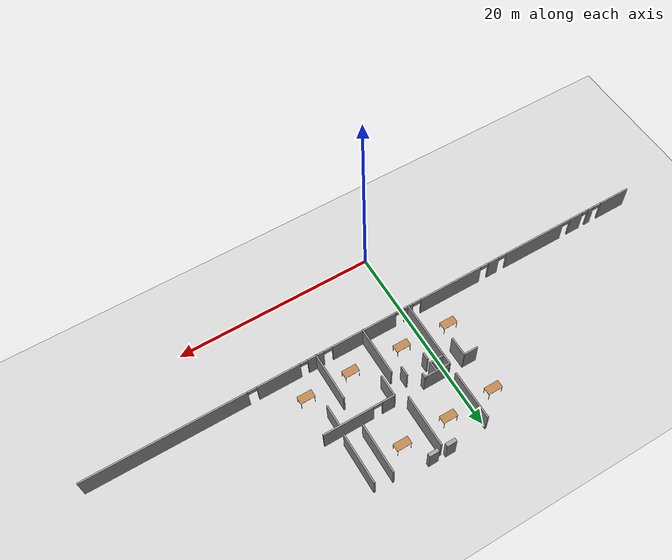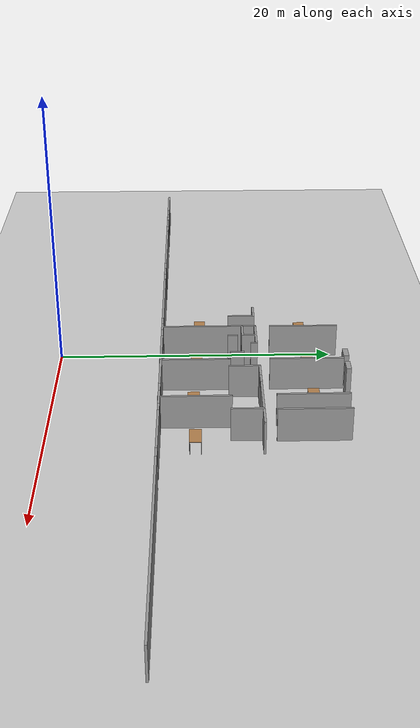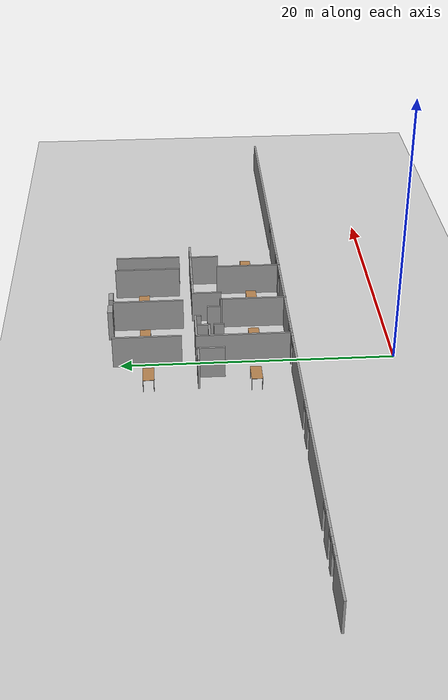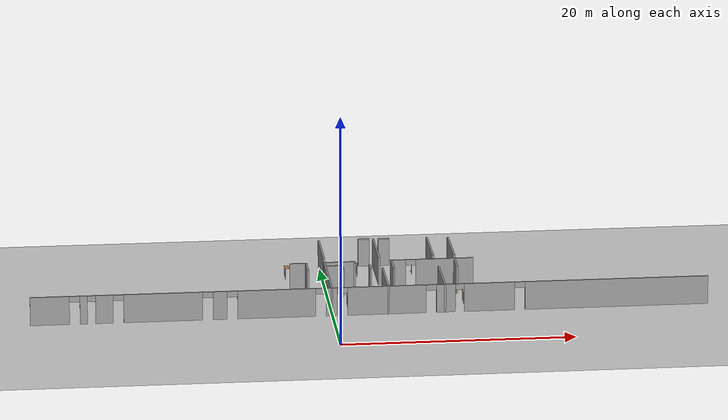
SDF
<sdf version="1.6">
 <world name="default">
  <model name="ground_plane">
   <static>1</static>
   <link name="link">
    <collision name="collision">
     <geometry><plane><normal>0 0 1</normal><size>100 100</size></plane></geometry>
     <surface><friction><ode><mu>100</mu><mu2>50</mu2></ode></friction></surface>
    </collision>
    <visual name="visual">
     <cast_shadows>0</cast_shadows>
     <geometry><plane><normal>0 0 1</normal><size>100 100</size></plane></geometry>
     <material>
      <script><uri>file://media/materials/scripts/gazebo.material</uri><name>Gazebo/Grey</name></script>
     </material>
    </visual>
   </link>
  </model>
  <model name="fin_se1f1.sdf">
   <pose>1.8125 -2.2901 0 0 -0 0</pose>
   <link name="Wall_108">
    <collision name="Wall_108_Collision">
     <geometry><box><size>7 0.15 2.5</size></box></geometry>
     <pose>0 0 1.25 0 -0 0</pose>
    </collision>
    <visual name="Wall_108_Visual">
     <pose>0 0 1.25 0 -0 0</pose>
     <geometry><box><size>7 0.15 2.5</size></box></geometry>
     <material>
      <script><uri>file://media/materials/scripts/gazebo.material</uri><name>Gazebo/Grey</name></script>
      <ambient>1 1 1 1</ambient>
     </material>
     <meta><layer>0</layer></meta>
    </visual>
    <pose>-1.87432 13.2994 0 0 -0 1.5708</pose>
   </link>
   <link name="Wall_109">
    <collision name="Wall_109_Collision">
     <geometry><box><size>2.75 0.15 2.5</size></box></geometry>
     <pose>0 0 1.25 0 -0 0</pose>
    </collision>
    <visual name="Wall_109_Visual">
     <pose>0 0 1.25 0 -0 0</pose>
     <geometry><box><size>2.75 0.15 2.5</size></box></geometry>
     <material>
      <script><uri>file://media/materials/scripts/gazebo.material</uri><name>Gazebo/Grey</name></script>
      <ambient>1 1 1 1</ambient>
     </material>
     <meta><layer>0</layer></meta>
    </visual>
    <pose>-0.574318 16.7244 0 0 -0 0</pose>
   </link>
   <link name="Wall_110">
    <collision name="Wall_110_Collision">
     <geometry><box><size>0.5 0.15 2.5</size></box></geometry>
     <pose>0 0 1.25 0 -0 0</pose>
    </collision>
    <visual name="Wall_110_Visual">
     <pose>0 0 1.25 0 -0 0</pose>
     <geometry><box><size>0.5 0.15 2.5</size></box></geometry>
     <material>
      <script><uri>file://media/materials/scripts/gazebo.material</uri><name>Gazebo/Grey</name></script>
      <ambient>1 1 1 1</ambient>
     </material>
     <meta><layer>0</layer></meta>
    </visual>
    <pose>0.725682 16.5494 0 0 0 -1.5708</pose>
   </link>
   <link name="Wall_133">
    <collision name="Wall_133_Collision">
     <geometry><box><size>1.5 0.15 2.5</size></box></geometry>
     <pose>0 0 1.25 0 -0 0</pose>
    </collision>
    <visual name="Wall_133_Visual">
     <pose>0 0 1.25 0 -0 0</pose>
     <geometry><box><size>1.5 0.15 2.5</size></box></geometry>
     <material>
      <script><uri>file://media/materials/scripts/gazebo.material</uri><name>Gazebo/Grey</name></script>
      <ambient>1 1 1 1</ambient>
     </material>
     <meta><layer>0</layer></meta>
    </visual>
    <pose>-4.14196 16.6807 0 0 -0 0</pose>
   </link>
   <link name="Wall_134">
    <collision name="Wall_134_Collision">
     <geometry><box><size>2 0.15 2.5</size></box></geometry>
     <pose>0 0 1.25 0 -0 0</pose>
    </collision>
    <visual name="Wall_134_Visual">
     <pose>0 0 1.25 0 -0 0</pose>
     <geometry><box><size>2 0.15 2.5</size></box></geometry>
     <material>
      <script><uri>file://media/materials/scripts/gazebo.material</uri><name>Gazebo/Grey</name></script>
      <ambient>1 1 1 1</ambient>
     </material>
     <meta><layer>0</layer></meta>
    </visual>
    <pose>-3.46696 15.7557 0 0 0 -1.5708</pose>
   </link>
   <link name="Wall_144">
    <collision name="Wall_144_Collision">
     <geometry><box><size>2.25 0.15 2.5</size></box></geometry>
     <pose>0 0 1.25 0 -0 0</pose>
    </collision>
    <visual name="Wall_144_Visual">
     <pose>0 0 1.25 0 -0 0</pose>
     <geometry><box><size>2.25 0.15 2.5</size></box></geometry>
     <material>
      <script><uri>file://media/materials/scripts/gazebo.material</uri><name>Gazebo/Grey</name></script>
      <ambient>1 1 1 1</ambient>
     </material>
     <meta><layer>0</layer></meta>
    </visual>
    <pose>3.95745 15.7396 0 0 -0 1.5708</pose>
   </link>
   <link name="Wall_145">
    <pose>7.50746 16.7896 0 0 -0 0</pose>
    <visual name="Wall_145_Visual_0">
     <pose>-2.96499 0 1.25 0 -0 0</pose>
     <geometry><box><size>1.32002 0.15 2.5</size></box></geometry>
     <material>
      <script><uri>file://media/materials/scripts/gazebo.material</uri><name>Gazebo/Grey</name></script>
      <ambient>1 1 1 1</ambient>
     </material>
     <meta><layer>0</layer></meta>
    </visual>
    <collision name="Wall_145_Collision_0">
     <geometry><box><size>1.32002 0.15 2.5</size></box></geometry>
     <pose>-2.96499 0 1.25 0 -0 0</pose>
    </collision>
    <visual name="Wall_145_Visual_1">
     <pose>1.11001 0 1.25 0 -0 0</pose>
     <geometry><box><size>5.02998 0.15 2.5</size></box></geometry>
     <material>
      <script><uri>file://media/materials/scripts/gazebo.material</uri><name>Gazebo/Grey</name></script>
      <ambient>1 1 1 1</ambient>
     </material>
     <meta><layer>0</layer></meta>
    </visual>
    <collision name="Wall_145_Collision_1">
     <geometry><box><size>5.02998 0.15 2.5</size></box></geometry>
     <pose>1.11001 0 1.25 0 -0 0</pose>
    </collision>
    <visual name="Wall_145_Visual_2">
     <pose>-1.85498 0 2.25 0 -0 0</pose>
     <geometry><box><size>0.9 0.15 0.5</size></box></geometry>
     <material>
      <script><uri>file://media/materials/scripts/gazebo.material</uri><name>Gazebo/Grey</name></script>
      <ambient>1 1 1 1</ambient>
     </material>
     <meta><layer>0</layer></meta>
    </visual>
    <collision name="Wall_145_Collision_2">
     <geometry><box><size>0.9 0.15 0.5</size></box></geometry>
     <pose>-1.85498 0 2.25 0 -0 0</pose>
    </collision>
   </link>
   <link name="Wall_148">
    <collision name="Wall_148_Collision">
     <geometry><box><size>2.25 0.15 2.5</size></box></geometry>
     <pose>0 0 1.25 0 -0 0</pose>
    </collision>
    <visual name="Wall_148_Visual">
     <pose>0 0 1.25 0 -0 0</pose>
     <geometry><box><size>2.25 0.15 2.5</size></box></geometry>
     <material>
      <script><uri>file://media/materials/scripts/gazebo.material</uri><name>Gazebo/Grey</name></script>
      <ambient>1 1 1 1</ambient>
     </material>
     <meta><layer>0</layer></meta>
    </visual>
    <pose>9.46821 15.7262 0 0 0 -1.5708</pose>
   </link>
   <link name="Wall_150">
    <collision name="Wall_150_Collision">
     <geometry><box><size>1.5 0.15 2.5</size></box></geometry>
     <pose>0 0 1.25 0 -0 0</pose>
    </collision>
    <visual name="Wall_150_Visual">
     <pose>0 0 1.25 0 -0 0</pose>
     <geometry><box><size>1.5 0.15 2.5</size></box></geometry>
     <material>
      <script><uri>file://media/materials/scripts/gazebo.material</uri><name>Gazebo/Grey</name></script>
      <ambient>1 1 1 1</ambient>
     </material>
     <meta><layer>0</layer></meta>
    </visual>
    <pose>-1.14582 15.7597 0 0 -0 0</pose>
   </link>
   <link name="Wall_151">
    <collision name="Wall_151_Collision">
     <geometry><box><size>1 0.15 2.5</size></box></geometry>
     <pose>0 0 1.25 0 -0 0</pose>
    </collision>
    <visual name="Wall_151_Visual">
     <pose>0 0 1.25 0 -0 0</pose>
     <geometry><box><size>1 0.15 2.5</size></box></geometry>
     <material>
      <script><uri>file://media/materials/scripts/gazebo.material</uri><name>Gazebo/Grey</name></script>
      <ambient>1 1 1 1</ambient>
     </material>
     <meta><layer>0</layer></meta>
    </visual>
    <pose>-0.470815 16.1847 0 0 -0 1.5708</pose>
   </link>
   <link name="Wall_153">
    <collision name="Wall_153_Collision">
     <geometry><box><size>0.75 0.15 2.5</size></box></geometry>
     <pose>0 0 1.25 0 -0 0</pose>
    </collision>
    <visual name="Wall_153_Visual">
     <pose>0 0 1.25 0 -0 0</pose>
     <geometry><box><size>0.75 0.15 2.5</size></box></geometry>
     <material>
      <script><uri>file://media/materials/scripts/gazebo.material</uri><name>Gazebo/Grey</name></script>
      <ambient>1 1 1 1</ambient>
     </material>
     <meta><layer>0</layer></meta>
    </visual>
    <pose>-0.42975 15.0316 0 0 0 -1.5708</pose>
   </link>
   <link name="Wall_155">
    <collision name="Wall_155_Collision">
     <geometry><box><size>1 0.15 2.5</size></box></geometry>
     <pose>0 0 1.25 0 -0 0</pose>
    </collision>
    <visual name="Wall_155_Visual">
     <pose>0 0 1.25 0 -0 0</pose>
     <geometry><box><size>1 0.15 2.5</size></box></geometry>
     <material>
      <script><uri>file://media/materials/scripts/gazebo.material</uri><name>Gazebo/Grey</name></script>
      <ambient>1 1 1 1</ambient>
     </material>
     <meta><layer>0</layer></meta>
    </visual>
    <pose>1.97786 15.2812 0 0 0 -1.5708</pose>
   </link>
   <link name="Wall_157">
    <collision name="Wall_157_Collision">
     <geometry><box><size>0.160508 0.15 2.5</size></box></geometry>
     <pose>0 0 1.25 0 -0 0</pose>
    </collision>
    <visual name="Wall_157_Visual">
     <pose>0 0 1.25 0 -0 0</pose>
     <geometry><box><size>0.160508 0.15 2.5</size></box></geometry>
     <material>
      <script><uri>file://media/materials/scripts/gazebo.material</uri><name>Gazebo/Grey</name></script>
      <ambient>1 1 1 1</ambient>
     </material>
     <meta><layer>0</layer></meta>
    </visual>
    <pose>2.99441 14.6949 0 0 -0 1.5708</pose>
   </link>
   <link name="Wall_158">
    <collision name="Wall_158_Collision">
     <geometry><box><size>5 0.15 2.5</size></box></geometry>
     <pose>0 0 1.25 0 -0 0</pose>
    </collision>
    <visual name="Wall_158_Visual">
     <pose>0 0 1.25 0 -0 0</pose>
     <geometry><box><size>5 0.15 2.5</size></box></geometry>
     <material>
      <script><uri>file://media/materials/scripts/gazebo.material</uri><name>Gazebo/Grey</name></script>
      <ambient>1 1 1 1</ambient>
     </material>
     <meta><layer>0</layer></meta>
    </visual>
    <pose>2.99441 12.2751 0 0 0 -1.5708</pose>
   </link>
   <link name="Wall_160">
    <collision name="Wall_160_Collision">
     <geometry><box><size>5 0.15 2.5</size></box></geometry>
     <pose>0 0 1.25 0 -0 0</pose>
    </collision>
    <visual name="Wall_160_Visual">
     <pose>0 0 1.25 0 -0 0</pose>
     <geometry><box><size>5 0.15 2.5</size></box></geometry>
     <material>
      <script><uri>file://media/materials/scripts/gazebo.material</uri><name>Gazebo/Grey</name></script>
      <ambient>1 1 1 1</ambient>
     </material>
     <meta><layer>0</layer></meta>
    </visual>
    <pose>7.86314 12.2646 0 0 0 -1.5708</pose>
   </link>
   <link name="Wall_30">
    <pose>1.50043 9.87457 0 0 -0 0</pose>
    <visual name="Wall_30_Visual_0">
     <pose>-27.4547 0 1.25 0 -0 0</pose>
     <geometry><box><size>3.34055 0.15 2.5</size></box></geometry>
     <material>
      <script><uri>file://media/materials/scripts/gazebo.material</uri><name>Gazebo/Grey</name></script>
      <ambient>1 1 1 1</ambient>
     </material>
     <meta><layer>0</layer></meta>
    </visual>
    <collision name="Wall_30_Collision_0">
     <geometry><box><size>3.34055 0.15 2.5</size></box></geometry>
     <pose>-27.4547 0 1.25 0 -0 0</pose>
    </collision>
    <visual name="Wall_30_Visual_1">
     <pose>-24.5701 0 1.25 0 -0 0</pose>
     <geometry><box><size>0.628632 0.15 2.5</size></box></geometry>
     <material>
      <script><uri>file://media/materials/scripts/gazebo.material</uri><name>Gazebo/Grey</name></script>
      <ambient>1 1 1 1</ambient>
     </material>
     <meta><layer>0</layer></meta>
    </visual>
    <collision name="Wall_30_Collision_1">
     <geometry><box><size>0.628632 0.15 2.5</size></box></geometry>
     <pose>-24.5701 0 1.25 0 -0 0</pose>
    </collision>
    <visual name="Wall_30_Visual_2">
     <pose>-22.8102 0 1.25 0 -0 0</pose>
     <geometry><box><size>1.49352 0.15 2.5</size></box></geometry>
     <material>
      <script><uri>file://media/materials/scripts/gazebo.material</uri><name>Gazebo/Grey</name></script>
      <ambient>1 1 1 1</ambient>
     </material>
     <meta><layer>0</layer></meta>
    </visual>
    <collision name="Wall_30_Collision_2">
     <geometry><box><size>1.49352 0.15 2.5</size></box></geometry>
     <pose>-22.8102 0 1.25 0 -0 0</pose>
    </collision>
    <visual name="Wall_30_Visual_3">
     <pose>-17.8019 0 1.25 0 -0 0</pose>
     <geometry><box><size>6.72304 0.15 2.5</size></box></geometry>
     <material>
      <script><uri>file://media/materials/scripts/gazebo.material</uri><name>Gazebo/Grey</name></script>
      <ambient>1 1 1 1</ambient>
     </material>
     <meta><layer>0</layer></meta>
    </visual>
    <collision name="Wall_30_Collision_3">
     <geometry><box><size>6.72304 0.15 2.5</size></box></geometry>
     <pose>-17.8019 0 1.25 0 -0 0</pose>
    </collision>
    <visual name="Wall_30_Visual_4">
     <pose>-12.9445 0 1.25 0 -0 0</pose>
     <geometry><box><size>1.19181 0.15 2.5</size></box></geometry>
     <material>
      <script><uri>file://media/materials/scripts/gazebo.material</uri><name>Gazebo/Grey</name></script>
      <ambient>1 1 1 1</ambient>
     </material>
     <meta><layer>0</layer></meta>
    </visual>
    <collision name="Wall_30_Collision_4">
     <geometry><box><size>1.19181 0.15 2.5</size></box></geometry>
     <pose>-12.9445 0 1.25 0 -0 0</pose>
    </collision>
    <visual name="Wall_30_Visual_5">
     <pose>-8.09712 0 1.25 0 -0 0</pose>
     <geometry><box><size>6.70293 0.15 2.5</size></box></geometry>
     <material>
      <script><uri>file://media/materials/scripts/gazebo.material</uri><name>Gazebo/Grey</name></script>
      <ambient>1 1 1 1</ambient>
     </material>
     <meta><layer>0</layer></meta>
    </visual>
    <collision name="Wall_30_Collision_5">
     <geometry><box><size>6.70293 0.15 2.5</size></box></geometry>
     <pose>-8.09712 0 1.25 0 -0 0</pose>
    </collision>
    <visual name="Wall_30_Visual_6">
     <pose>-3.38049 0 1.25 0 -0 0</pose>
     <geometry><box><size>0.930335 0.15 2.5</size></box></geometry>
     <material>
      <script><uri>file://media/materials/scripts/gazebo.material</uri><name>Gazebo/Grey</name></script>
      <ambient>1 1 1 1</ambient>
     </material>
     <meta><layer>0</layer></meta>
    </visual>
    <collision name="Wall_30_Collision_6">
     <geometry><box><size>0.930335 0.15 2.5</size></box></geometry>
     <pose>-3.38049 0 1.25 0 -0 0</pose>
    </collision>
    <visual name="Wall_30_Visual_7">
     <pose>1.35626 0 1.25 0 -0 0</pose>
     <geometry><box><size>6.74316 0.15 2.5</size></box></geometry>
     <material>
      <script><uri>file://media/materials/scripts/gazebo.material</uri><name>Gazebo/Grey</name></script>
      <ambient>1 1 1 1</ambient>
     </material>
     <meta><layer>0</layer></meta>
    </visual>
    <collision name="Wall_30_Collision_7">
     <geometry><box><size>6.74316 0.15 2.5</size></box></geometry>
     <pose>1.35626 0 1.25 0 -0 0</pose>
    </collision>
    <visual name="Wall_30_Visual_8">
     <pose>6.44499 0 1.25 0 -0 0</pose>
     <geometry><box><size>1.63431 0.15 2.5</size></box></geometry>
     <material>
      <script><uri>file://media/materials/scripts/gazebo.material</uri><name>Gazebo/Grey</name></script>
      <ambient>1 1 1 1</ambient>
     </material>
     <meta><layer>0</layer></meta>
    </visual>
    <collision name="Wall_30_Collision_8">
     <geometry><box><size>1.63431 0.15 2.5</size></box></geometry>
     <pose>6.44499 0 1.25 0 -0 0</pose>
    </collision>
    <visual name="Wall_30_Visual_9">
     <pose>10.1962 0 1.25 0 -0 0</pose>
     <geometry><box><size>4.34964 0.15 2.5</size></box></geometry>
     <material>
      <script><uri>file://media/materials/scripts/gazebo.material</uri><name>Gazebo/Grey</name></script>
      <ambient>1 1 1 1</ambient>
     </material>
     <meta><layer>0</layer></meta>
    </visual>
    <collision name="Wall_30_Collision_9">
     <geometry><box><size>4.34964 0.15 2.5</size></box></geometry>
     <pose>10.1962 0 1.25 0 -0 0</pose>
    </collision>
    <visual name="Wall_30_Visual_10">
     <pose>21.198 0 1.25 0 -0 0</pose>
     <geometry><box><size>15.854 0.15 2.5</size></box></geometry>
     <material>
      <script><uri>file://media/materials/scripts/gazebo.material</uri><name>Gazebo/Grey</name></script>
      <ambient>1 1 1 1</ambient>
     </material>
     <meta><layer>0</layer></meta>
    </visual>
    <collision name="Wall_30_Collision_10">
     <geometry><box><size>15.854 0.15 2.5</size></box></geometry>
     <pose>21.198 0 1.25 0 -0 0</pose>
    </collision>
    <visual name="Wall_30_Visual_11">
     <pose>-25.3345 0 2.25 0 -0 0</pose>
     <geometry><box><size>0.9 0.15 0.5</size></box></geometry>
     <material>
      <script><uri>file://media/materials/scripts/gazebo.material</uri><name>Gazebo/Grey</name></script>
      <ambient>1 1 1 1</ambient>
     </material>
     <meta><layer>0</layer></meta>
    </visual>
    <collision name="Wall_30_Collision_11">
     <geometry><box><size>0.9 0.15 0.5</size></box></geometry>
     <pose>-25.3345 0 2.25 0 -0 0</pose>
    </collision>
    <visual name="Wall_30_Visual_12">
     <pose>-23.9064 0 2.25 0 -0 0</pose>
     <geometry><box><size>0.698864 0.15 0.5</size></box></geometry>
     <material>
      <script><uri>file://media/materials/scripts/gazebo.material</uri><name>Gazebo/Grey</name></script>
      <ambient>1 1 1 1</ambient>
     </material>
     <meta><layer>0</layer></meta>
    </visual>
    <collision name="Wall_30_Collision_12">
     <geometry><box><size>0.698864 0.15 0.5</size></box></geometry>
     <pose>-23.9064 0 2.25 0 -0 0</pose>
    </collision>
    <visual name="Wall_30_Visual_13">
     <pose>-21.6134 0 2.25 0 -0 0</pose>
     <geometry><box><size>0.9 0.15 0.5</size></box></geometry>
     <material>
      <script><uri>file://media/materials/scripts/gazebo.material</uri><name>Gazebo/Grey</name></script>
      <ambient>1 1 1 1</ambient>
     </material>
     <meta><layer>0</layer></meta>
    </visual>
    <collision name="Wall_30_Collision_13">
     <geometry><box><size>0.9 0.15 0.5</size></box></geometry>
     <pose>-21.6134 0 2.25 0 -0 0</pose>
    </collision>
    <visual name="Wall_30_Visual_14">
     <pose>-13.9904 0 2.25 0 -0 0</pose>
     <geometry><box><size>0.9 0.15 0.5</size></box></geometry>
     <material>
      <script><uri>file://media/materials/scripts/gazebo.material</uri><name>Gazebo/Grey</name></script>
      <ambient>1 1 1 1</ambient>
     </material>
     <meta><layer>0</layer></meta>
    </visual>
    <collision name="Wall_30_Collision_14">
     <geometry><box><size>0.9 0.15 0.5</size></box></geometry>
     <pose>-13.9904 0 2.25 0 -0 0</pose>
    </collision>
    <visual name="Wall_30_Visual_15">
     <pose>-11.8986 0 2.25 0 -0 0</pose>
     <geometry><box><size>0.9 0.15 0.5</size></box></geometry>
     <material>
      <script><uri>file://media/materials/scripts/gazebo.material</uri><name>Gazebo/Grey</name></script>
      <ambient>1 1 1 1</ambient>
     </material>
     <meta><layer>0</layer></meta>
    </visual>
    <collision name="Wall_30_Collision_15">
     <geometry><box><size>0.9 0.15 0.5</size></box></geometry>
     <pose>-11.8986 0 2.25 0 -0 0</pose>
    </collision>
    <visual name="Wall_30_Visual_16">
     <pose>-4.29566 0 2.25 0 -0 0</pose>
     <geometry><box><size>0.9 0.15 0.5</size></box></geometry>
     <material>
      <script><uri>file://media/materials/scripts/gazebo.material</uri><name>Gazebo/Grey</name></script>
      <ambient>1 1 1 1</ambient>
     </material>
     <meta><layer>0</layer></meta>
    </visual>
    <collision name="Wall_30_Collision_16">
     <geometry><box><size>0.9 0.15 0.5</size></box></geometry>
     <pose>-4.29566 0 2.25 0 -0 0</pose>
    </collision>
    <visual name="Wall_30_Visual_17">
     <pose>-2.46532 0 2.25 0 -0 0</pose>
     <geometry><box><size>0.9 0.15 0.5</size></box></geometry>
     <material>
      <script><uri>file://media/materials/scripts/gazebo.material</uri><name>Gazebo/Grey</name></script>
      <ambient>1 1 1 1</ambient>
     </material>
     <meta><layer>0</layer></meta>
    </visual>
    <collision name="Wall_30_Collision_17">
     <geometry><box><size>0.9 0.15 0.5</size></box></geometry>
     <pose>-2.46532 0 2.25 0 -0 0</pose>
    </collision>
    <visual name="Wall_30_Visual_18">
     <pose>5.17784 0 2.25 0 -0 0</pose>
     <geometry><box><size>0.9 0.15 0.5</size></box></geometry>
     <material>
      <script><uri>file://media/materials/scripts/gazebo.material</uri><name>Gazebo/Grey</name></script>
      <ambient>1 1 1 1</ambient>
     </material>
     <meta><layer>0</layer></meta>
    </visual>
    <collision name="Wall_30_Collision_18">
     <geometry><box><size>0.9 0.15 0.5</size></box></geometry>
     <pose>5.17784 0 2.25 0 -0 0</pose>
    </collision>
    <visual name="Wall_30_Visual_19">
     <pose>7.64175 0 2.25 0 -0 0</pose>
     <geometry><box><size>0.759205 0.15 0.5</size></box></geometry>
     <material>
      <script><uri>file://media/materials/scripts/gazebo.material</uri><name>Gazebo/Grey</name></script>
      <ambient>1 1 1 1</ambient>
     </material>
     <meta><layer>0</layer></meta>
    </visual>
    <collision name="Wall_30_Collision_19">
     <geometry><box><size>0.759205 0.15 0.5</size></box></geometry>
     <pose>7.64175 0 2.25 0 -0 0</pose>
    </collision>
    <visual name="Wall_30_Visual_20">
     <pose>12.821 0 2.25 0 -0 0</pose>
     <geometry><box><size>0.9 0.15 0.5</size></box></geometry>
     <material>
      <script><uri>file://media/materials/scripts/gazebo.material</uri><name>Gazebo/Grey</name></script>
      <ambient>1 1 1 1</ambient>
     </material>
     <meta><layer>0</layer></meta>
    </visual>
    <collision name="Wall_30_Collision_20">
     <geometry><box><size>0.9 0.15 0.5</size></box></geometry>
     <pose>12.821 0 2.25 0 -0 0</pose>
    </collision>
   </link>
   <link name="Wall_72">
    <collision name="Wall_72_Collision">
     <geometry><box><size>5 0.15 2.5</size></box></geometry>
     <pose>0 0 1.25 0 -0 0</pose>
    </collision>
    <visual name="Wall_72_Visual">
     <pose>0 0 1.25 0 -0 0</pose>
     <geometry><box><size>5 0.15 2.5</size></box></geometry>
     <material>
      <script><uri>file://media/materials/scripts/gazebo.material</uri><name>Gazebo/Grey</name></script>
      <ambient>1 1 1 1</ambient>
     </material>
     <meta><layer>0</layer></meta>
    </visual>
    <pose>9.57098 20.1709 0 0 0 -1.5708</pose>
   </link>
   <link name="Wall_74">
    <collision name="Wall_74_Collision">
     <geometry><box><size>5 0.15 2.5</size></box></geometry>
     <pose>0 0 1.25 0 -0 0</pose>
    </collision>
    <visual name="Wall_74_Visual">
     <pose>0 0 1.25 0 -0 0</pose>
     <geometry><box><size>5 0.15 2.5</size></box></geometry>
     <material>
      <script><uri>file://media/materials/scripts/gazebo.material</uri><name>Gazebo/Grey</name></script>
      <ambient>1 1 1 1</ambient>
     </material>
     <meta><layer>0</layer></meta>
    </visual>
    <pose>7.72515 20.2325 0 0 0 -1.5708</pose>
   </link>
   <link name="Wall_76">
    <collision name="Wall_76_Collision">
     <geometry><box><size>5.25 0.15 2.5</size></box></geometry>
     <pose>0 0 1.25 0 -0 0</pose>
    </collision>
    <visual name="Wall_76_Visual">
     <pose>0 0 1.25 0 -0 0</pose>
     <geometry><box><size>5.25 0.15 2.5</size></box></geometry>
     <material>
      <script><uri>file://media/materials/scripts/gazebo.material</uri><name>Gazebo/Grey</name></script>
      <ambient>1 1 1 1</ambient>
     </material>
     <meta><layer>0</layer></meta>
    </visual>
    <pose>2.9875 20.1729 0 0 0 -1.5708</pose>
   </link>
   <link name="Wall_78">
    <collision name="Wall_78_Collision">
     <geometry><box><size>5 0.15 2.5</size></box></geometry>
     <pose>0 0 1.25 0 -0 0</pose>
    </collision>
    <visual name="Wall_78_Visual">
     <pose>0 0 1.25 0 -0 0</pose>
     <geometry><box><size>5 0.15 2.5</size></box></geometry>
     <material>
      <script><uri>file://media/materials/scripts/gazebo.material</uri><name>Gazebo/Grey</name></script>
      <ambient>1 1 1 1</ambient>
     </material>
     <meta><layer>0</layer></meta>
    </visual>
    <pose>-1.81168 20.294 0 0 0 -1.5708</pose>
   </link>
   <static>1</static>
  </model>
  <model name="table_6">
   <static>1</static>
   <link name="link">
    <collision name="surface">
     <pose>0 0 1 0 -0 0</pose>
     <geometry><box><size>1.5 0.8 0.03</size></box></geometry>
     <surface><friction><ode><mu>0.6</mu><mu2>0.6</mu2></ode></friction></surface>
    </collision>
    <visual name="visual1">
     <pose>0 0 1 0 -0 0</pose>
     <geometry><box><size>1.5 0.8 0.03</size></box></geometry>
     <material>
      <script><uri>file://media/materials/scripts/gazebo.material</uri><name>Gazebo/Wood</name></script>
     </material>
    </visual>
    <collision name="front_left_leg">
     <pose>0.68 0.38 0.5 0 -0 0</pose>
     <geometry><cylinder><radius>0.02</radius><length>1</length></cylinder></geometry>
    </collision>
    <visual name="front_left_leg">
     <pose>0.68 0.38 0.5 0 -0 0</pose>
     <geometry><cylinder><radius>0.02</radius><length>1</length></cylinder></geometry>
     <material>
      <script><uri>file://media/materials/scripts/gazebo.material</uri><name>Gazebo/Grey</name></script>
     </material>
    </visual>
    <collision name="front_right_leg">
     <pose>0.68 -0.38 0.5 0 -0 0</pose>
     <geometry><cylinder><radius>0.02</radius><length>1</length></cylinder></geometry>
    </collision>
    <visual name="front_right_leg">
     <pose>0.68 -0.38 0.5 0 -0 0</pose>
     <geometry><cylinder><radius>0.02</radius><length>1</length></cylinder></geometry>
     <material>
      <script><uri>file://media/materials/scripts/gazebo.material</uri><name>Gazebo/Grey</name></script>
     </material>
    </visual>
    <collision name="back_right_leg">
     <pose>-0.68 -0.38 0.5 0 -0 0</pose>
     <geometry><cylinder><radius>0.02</radius><length>1</length></cylinder></geometry>
    </collision>
    <visual name="back_right_leg">
     <pose>-0.68 -0.38 0.5 0 -0 0</pose>
     <geometry><cylinder><radius>0.02</radius><length>1</length></cylinder></geometry>
     <material>
      <script><uri>file://media/materials/scripts/gazebo.material</uri><name>Gazebo/Grey</name></script>
     </material>
    </visual>
    <collision name="back_left_leg">
     <pose>-0.68 0.38 0.5 0 -0 0</pose>
     <geometry><cylinder><radius>0.02</radius><length>1</length></cylinder></geometry>
    </collision>
    <visual name="back_left_leg">
     <pose>-0.68 0.38 0.5 0 -0 0</pose>
     <geometry><cylinder><radius>0.02</radius><length>1</length></cylinder></geometry>
     <material>
      <script><uri>file://media/materials/scripts/gazebo.material</uri><name>Gazebo/Grey</name></script>
     </material>
    </visual>
   </link>
   <pose>-2.52875 17.9414 0 0 -0 0</pose>
  </model>
  <model name="table_7">
   <static>1</static>
   <link name="link">
    <collision name="surface">
     <pose>0 0 1 0 -0 0</pose>
     <geometry><box><size>1.5 0.8 0.03</size></box></geometry>
     <surface><friction><ode><mu>0.6</mu><mu2>0.6</mu2></ode></friction></surface>
    </collision>
    <visual name="visual1">
     <pose>0 0 1 0 -0 0</pose>
     <geometry><box><size>1.5 0.8 0.03</size></box></geometry>
     <material>
      <script><uri>file://media/materials/scripts/gazebo.material</uri><name>Gazebo/Wood</name></script>
     </material>
    </visual>
    <collision name="front_left_leg">
     <pose>0.68 0.38 0.5 0 -0 0</pose>
     <geometry><cylinder><radius>0.02</radius><length>1</length></cylinder></geometry>
    </collision>
    <visual name="front_left_leg">
     <pose>0.68 0.38 0.5 0 -0 0</pose>
     <geometry><cylinder><radius>0.02</radius><length>1</length></cylinder></geometry>
     <material>
      <script><uri>file://media/materials/scripts/gazebo.material</uri><name>Gazebo/Grey</name></script>
     </material>
    </visual>
    <collision name="front_right_leg">
     <pose>0.68 -0.38 0.5 0 -0 0</pose>
     <geometry><cylinder><radius>0.02</radius><length>1</length></cylinder></geometry>
    </collision>
    <visual name="front_right_leg">
     <pose>0.68 -0.38 0.5 0 -0 0</pose>
     <geometry><cylinder><radius>0.02</radius><length>1</length></cylinder></geometry>
     <material>
      <script><uri>file://media/materials/scripts/gazebo.material</uri><name>Gazebo/Grey</name></script>
     </material>
    </visual>
    <collision name="back_right_leg">
     <pose>-0.68 -0.38 0.5 0 -0 0</pose>
     <geometry><cylinder><radius>0.02</radius><length>1</length></cylinder></geometry>
    </collision>
    <visual name="back_right_leg">
     <pose>-0.68 -0.38 0.5 0 -0 0</pose>
     <geometry><cylinder><radius>0.02</radius><length>1</length></cylinder></geometry>
     <material>
      <script><uri>file://media/materials/scripts/gazebo.material</uri><name>Gazebo/Grey</name></script>
     </material>
    </visual>
    <collision name="back_left_leg">
     <pose>-0.68 0.38 0.5 0 -0 0</pose>
     <geometry><cylinder><radius>0.02</radius><length>1</length></cylinder></geometry>
    </collision>
    <visual name="back_left_leg">
     <pose>-0.68 0.38 0.5 0 -0 0</pose>
     <geometry><cylinder><radius>0.02</radius><length>1</length></cylinder></geometry>
     <material>
      <script><uri>file://media/materials/scripts/gazebo.material</uri><name>Gazebo/Grey</name></script>
     </material>
    </visual>
   </link>
   <pose>-2.78705 10.3298 0 0 -0 0</pose>
  </model>
  <model name="table_8">
   <static>1</static>
   <link name="link">
    <collision name="surface">
     <pose>0 0 1 0 -0 0</pose>
     <geometry><box><size>1.5 0.8 0.03</size></box></geometry>
     <surface><friction><ode><mu>0.6</mu><mu2>0.6</mu2></ode></friction></surface>
    </collision>
    <visual name="visual1">
     <pose>0 0 1 0 -0 0</pose>
     <geometry><box><size>1.5 0.8 0.03</size></box></geometry>
     <material>
      <script><uri>file://media/materials/scripts/gazebo.material</uri><name>Gazebo/Wood</name></script>
     </material>
    </visual>
    <collision name="front_left_leg">
     <pose>0.68 0.38 0.5 0 -0 0</pose>
     <geometry><cylinder><radius>0.02</radius><length>1</length></cylinder></geometry>
    </collision>
    <visual name="front_left_leg">
     <pose>0.68 0.38 0.5 0 -0 0</pose>
     <geometry><cylinder><radius>0.02</radius><length>1</length></cylinder></geometry>
     <material>
      <script><uri>file://media/materials/scripts/gazebo.material</uri><name>Gazebo/Grey</name></script>
     </material>
    </visual>
    <collision name="front_right_leg">
     <pose>0.68 -0.38 0.5 0 -0 0</pose>
     <geometry><cylinder><radius>0.02</radius><length>1</length></cylinder></geometry>
    </collision>
    <visual name="front_right_leg">
     <pose>0.68 -0.38 0.5 0 -0 0</pose>
     <geometry><cylinder><radius>0.02</radius><length>1</length></cylinder></geometry>
     <material>
      <script><uri>file://media/materials/scripts/gazebo.material</uri><name>Gazebo/Grey</name></script>
     </material>
    </visual>
    <collision name="back_right_leg">
     <pose>-0.68 -0.38 0.5 0 -0 0</pose>
     <geometry><cylinder><radius>0.02</radius><length>1</length></cylinder></geometry>
    </collision>
    <visual name="back_right_leg">
     <pose>-0.68 -0.38 0.5 0 -0 0</pose>
     <geometry><cylinder><radius>0.02</radius><length>1</length></cylinder></geometry>
     <material>
      <script><uri>file://media/materials/scripts/gazebo.material</uri><name>Gazebo/Grey</name></script>
     </material>
    </visual>
    <collision name="back_left_leg">
     <pose>-0.68 0.38 0.5 0 -0 0</pose>
     <geometry><cylinder><radius>0.02</radius><length>1</length></cylinder></geometry>
    </collision>
    <visual name="back_left_leg">
     <pose>-0.68 0.38 0.5 0 -0 0</pose>
     <geometry><cylinder><radius>0.02</radius><length>1</length></cylinder></geometry>
     <material>
      <script><uri>file://media/materials/scripts/gazebo.material</uri><name>Gazebo/Grey</name></script>
     </material>
    </visual>
   </link>
   <pose>2.18282 10.0913 0 0 -0 0</pose>
  </model>
  <model name="table_9">
   <static>1</static>
   <link name="link">
    <collision name="surface">
     <pose>0 0 1 0 -0 0</pose>
     <geometry><box><size>1.5 0.8 0.03</size></box></geometry>
     <surface><friction><ode><mu>0.6</mu><mu2>0.6</mu2></ode></friction></surface>
    </collision>
    <visual name="visual1">
     <pose>0 0 1 0 -0 0</pose>
     <geometry><box><size>1.5 0.8 0.03</size></box></geometry>
     <material>
      <script><uri>file://media/materials/scripts/gazebo.material</uri><name>Gazebo/Wood</name></script>
     </material>
    </visual>
    <collision name="front_left_leg">
     <pose>0.68 0.38 0.5 0 -0 0</pose>
     <geometry><cylinder><radius>0.02</radius><length>1</length></cylinder></geometry>
    </collision>
    <visual name="front_left_leg">
     <pose>0.68 0.38 0.5 0 -0 0</pose>
     <geometry><cylinder><radius>0.02</radius><length>1</length></cylinder></geometry>
     <material>
      <script><uri>file://media/materials/scripts/gazebo.material</uri><name>Gazebo/Grey</name></script>
     </material>
    </visual>
    <collision name="front_right_leg">
     <pose>0.68 -0.38 0.5 0 -0 0</pose>
     <geometry><cylinder><radius>0.02</radius><length>1</length></cylinder></geometry>
    </collision>
    <visual name="front_right_leg">
     <pose>0.68 -0.38 0.5 0 -0 0</pose>
     <geometry><cylinder><radius>0.02</radius><length>1</length></cylinder></geometry>
     <material>
      <script><uri>file://media/materials/scripts/gazebo.material</uri><name>Gazebo/Grey</name></script>
     </material>
    </visual>
    <collision name="back_right_leg">
     <pose>-0.68 -0.38 0.5 0 -0 0</pose>
     <geometry><cylinder><radius>0.02</radius><length>1</length></cylinder></geometry>
    </collision>
    <visual name="back_right_leg">
     <pose>-0.68 -0.38 0.5 0 -0 0</pose>
     <geometry><cylinder><radius>0.02</radius><length>1</length></cylinder></geometry>
     <material>
      <script><uri>file://media/materials/scripts/gazebo.material</uri><name>Gazebo/Grey</name></script>
     </material>
    </visual>
    <collision name="back_left_leg">
     <pose>-0.68 0.38 0.5 0 -0 0</pose>
     <geometry><cylinder><radius>0.02</radius><length>1</length></cylinder></geometry>
    </collision>
    <visual name="back_left_leg">
     <pose>-0.68 0.38 0.5 0 -0 0</pose>
     <geometry><cylinder><radius>0.02</radius><length>1</length></cylinder></geometry>
     <material>
      <script><uri>file://media/materials/scripts/gazebo.material</uri><name>Gazebo/Grey</name></script>
     </material>
    </visual>
   </link>
   <pose>2.40774 18.1462 0 0 -0 0</pose>
  </model>
  <model name="table_10">
   <static>1</static>
   <link name="link">
    <collision name="surface">
     <pose>0 0 1 0 -0 0</pose>
     <geometry><box><size>1.5 0.8 0.03</size></box></geometry>
     <surface><friction><ode><mu>0.6</mu><mu2>0.6</mu2></ode></friction></surface>
    </collision>
    <visual name="visual1">
     <pose>0 0 1 0 -0 0</pose>
     <geometry><box><size>1.5 0.8 0.03</size></box></geometry>
     <material>
      <script><uri>file://media/materials/scripts/gazebo.material</uri><name>Gazebo/Wood</name></script>
     </material>
    </visual>
    <collision name="front_left_leg">
     <pose>0.68 0.38 0.5 0 -0 0</pose>
     <geometry><cylinder><radius>0.02</radius><length>1</length></cylinder></geometry>
    </collision>
    <visual name="front_left_leg">
     <pose>0.68 0.38 0.5 0 -0 0</pose>
     <geometry><cylinder><radius>0.02</radius><length>1</length></cylinder></geometry>
     <material>
      <script><uri>file://media/materials/scripts/gazebo.material</uri><name>Gazebo/Grey</name></script>
     </material>
    </visual>
    <collision name="front_right_leg">
     <pose>0.68 -0.38 0.5 0 -0 0</pose>
     <geometry><cylinder><radius>0.02</radius><length>1</length></cylinder></geometry>
    </collision>
    <visual name="front_right_leg">
     <pose>0.68 -0.38 0.5 0 -0 0</pose>
     <geometry><cylinder><radius>0.02</radius><length>1</length></cylinder></geometry>
     <material>
      <script><uri>file://media/materials/scripts/gazebo.material</uri><name>Gazebo/Grey</name></script>
     </material>
    </visual>
    <collision name="back_right_leg">
     <pose>-0.68 -0.38 0.5 0 -0 0</pose>
     <geometry><cylinder><radius>0.02</radius><length>1</length></cylinder></geometry>
    </collision>
    <visual name="back_right_leg">
     <pose>-0.68 -0.38 0.5 0 -0 0</pose>
     <geometry><cylinder><radius>0.02</radius><length>1</length></cylinder></geometry>
     <material>
      <script><uri>file://media/materials/scripts/gazebo.material</uri><name>Gazebo/Grey</name></script>
     </material>
    </visual>
    <collision name="back_left_leg">
     <pose>-0.68 0.38 0.5 0 -0 0</pose>
     <geometry><cylinder><radius>0.02</radius><length>1</length></cylinder></geometry>
    </collision>
    <visual name="back_left_leg">
     <pose>-0.68 0.38 0.5 0 -0 0</pose>
     <geometry><cylinder><radius>0.02</radius><length>1</length></cylinder></geometry>
     <material>
      <script><uri>file://media/materials/scripts/gazebo.material</uri><name>Gazebo/Grey</name></script>
     </material>
    </visual>
   </link>
   <pose>7.52632 9.88124 0 0 -0 0</pose>
  </model>
  <model name="table_11">
   <static>1</static>
   <link name="link">
    <collision name="surface">
     <pose>0 0 1 0 -0 0</pose>
     <geometry><box><size>1.5 0.8 0.03</size></box></geometry>
     <surface><friction><ode><mu>0.6</mu><mu2>0.6</mu2></ode></friction></surface>
    </collision>
    <visual name="visual1">
     <pose>0 0 1 0 -0 0</pose>
     <geometry><box><size>1.5 0.8 0.03</size></box></geometry>
     <material>
      <script><uri>file://media/materials/scripts/gazebo.material</uri><name>Gazebo/Wood</name></script>
     </material>
    </visual>
    <collision name="front_left_leg">
     <pose>0.68 0.38 0.5 0 -0 0</pose>
     <geometry><cylinder><radius>0.02</radius><length>1</length></cylinder></geometry>
    </collision>
    <visual name="front_left_leg">
     <pose>0.68 0.38 0.5 0 -0 0</pose>
     <geometry><cylinder><radius>0.02</radius><length>1</length></cylinder></geometry>
     <material>
      <script><uri>file://media/materials/scripts/gazebo.material</uri><name>Gazebo/Grey</name></script>
     </material>
    </visual>
    <collision name="front_right_leg">
     <pose>0.68 -0.38 0.5 0 -0 0</pose>
     <geometry><cylinder><radius>0.02</radius><length>1</length></cylinder></geometry>
    </collision>
    <visual name="front_right_leg">
     <pose>0.68 -0.38 0.5 0 -0 0</pose>
     <geometry><cylinder><radius>0.02</radius><length>1</length></cylinder></geometry>
     <material>
      <script><uri>file://media/materials/scripts/gazebo.material</uri><name>Gazebo/Grey</name></script>
     </material>
    </visual>
    <collision name="back_right_leg">
     <pose>-0.68 -0.38 0.5 0 -0 0</pose>
     <geometry><cylinder><radius>0.02</radius><length>1</length></cylinder></geometry>
    </collision>
    <visual name="back_right_leg">
     <pose>-0.68 -0.38 0.5 0 -0 0</pose>
     <geometry><cylinder><radius>0.02</radius><length>1</length></cylinder></geometry>
     <material>
      <script><uri>file://media/materials/scripts/gazebo.material</uri><name>Gazebo/Grey</name></script>
     </material>
    </visual>
    <collision name="back_left_leg">
     <pose>-0.68 0.38 0.5 0 -0 0</pose>
     <geometry><cylinder><radius>0.02</radius><length>1</length></cylinder></geometry>
    </collision>
    <visual name="back_left_leg">
     <pose>-0.68 0.38 0.5 0 -0 0</pose>
     <geometry><cylinder><radius>0.02</radius><length>1</length></cylinder></geometry>
     <material>
      <script><uri>file://media/materials/scripts/gazebo.material</uri><name>Gazebo/Grey</name></script>
     </material>
    </visual>
   </link>
   <pose>7.23952 18.2095 0 0 -0 0</pose>
  </model>
  <model name="table_12">
   <static>1</static>
   <link name="link">
    <collision name="surface">
     <pose>0 0 1 0 -0 0</pose>
     <geometry><box><size>1.5 0.8 0.03</size></box></geometry>
     <surface><friction><ode><mu>0.6</mu><mu2>0.6</mu2></ode></friction></surface>
    </collision>
    <visual name="visual1">
     <pose>0 0 1 0 -0 0</pose>
     <geometry><box><size>1.5 0.8 0.03</size></box></geometry>
     <material>
      <script><uri>file://media/materials/scripts/gazebo.material</uri><name>Gazebo/Wood</name></script>
     </material>
    </visual>
    <collision name="front_left_leg">
     <pose>0.68 0.38 0.5 0 -0 0</pose>
     <geometry><cylinder><radius>0.02</radius><length>1</length></cylinder></geometry>
    </collision>
    <visual name="front_left_leg">
     <pose>0.68 0.38 0.5 0 -0 0</pose>
     <geometry><cylinder><radius>0.02</radius><length>1</length></cylinder></geometry>
     <material>
      <script><uri>file://media/materials/scripts/gazebo.material</uri><name>Gazebo/Grey</name></script>
     </material>
    </visual>
    <collision name="front_right_leg">
     <pose>0.68 -0.38 0.5 0 -0 0</pose>
     <geometry><cylinder><radius>0.02</radius><length>1</length></cylinder></geometry>
    </collision>
    <visual name="front_right_leg">
     <pose>0.68 -0.38 0.5 0 -0 0</pose>
     <geometry><cylinder><radius>0.02</radius><length>1</length></cylinder></geometry>
     <material>
      <script><uri>file://media/materials/scripts/gazebo.material</uri><name>Gazebo/Grey</name></script>
     </material>
    </visual>
    <collision name="back_right_leg">
     <pose>-0.68 -0.38 0.5 0 -0 0</pose>
     <geometry><cylinder><radius>0.02</radius><length>1</length></cylinder></geometry>
    </collision>
    <visual name="back_right_leg">
     <pose>-0.68 -0.38 0.5 0 -0 0</pose>
     <geometry><cylinder><radius>0.02</radius><length>1</length></cylinder></geometry>
     <material>
      <script><uri>file://media/materials/scripts/gazebo.material</uri><name>Gazebo/Grey</name></script>
     </material>
    </visual>
    <collision name="back_left_leg">
     <pose>-0.68 0.38 0.5 0 -0 0</pose>
     <geometry><cylinder><radius>0.02</radius><length>1</length></cylinder></geometry>
    </collision>
    <visual name="back_left_leg">
     <pose>-0.68 0.38 0.5 0 -0 0</pose>
     <geometry><cylinder><radius>0.02</radius><length>1</length></cylinder></geometry>
     <material>
      <script><uri>file://media/materials/scripts/gazebo.material</uri><name>Gazebo/Grey</name></script>
     </material>
    </visual>
   </link>
   <pose>12.1915 9.99779 0 0 -0 0</pose>
  </model>
  <model name="unit_box_8">
   <pose>3.97384 20.7033 1.2265 0 -0 0.000319</pose>
   <link name="link">
    <inertial>
     <mass>1</mass>
     <inertia>
      <ixx>0.166667</ixx>
      <ixy>0</ixy>
      <ixz>0</ixz>
      <iyy>0.166667</iyy>
      <iyz>0</iyz>
      <izz>0.166667</izz>
     </inertia>
    </inertial>
    <collision name="collision"><geometry><box><size>1 0.381185 2.453</size></box></geometry></collision>
    <visual name="visual">
     <geometry><box><size>1 0.381185 2.453</size></box></geometry>
     <material>
      <script><name>Gazebo/Grey</name><uri>file://media/materials/scripts/gazebo.material</uri></script>
     </material>
    </visual>
   </link>
  </model>
  <model name="unit_box_9">
   <pose>5.72907 20.6851 1.21433 1e-06 -1e-06 1e-05</pose>
   <link name="link">
    <inertial>
     <mass>1</mass>
     <inertia>
      <ixx>0.166667</ixx>
      <ixy>0</ixy>
      <ixz>0</ixz>
      <iyy>0.166667</iyy>
      <iyz>0</iyz>
      <izz>0.166667</izz>
     </inertia>
    </inertial>
    <collision name="collision"><geometry><box><size>1 0.34699 2.42867</size></box></geometry></collision>
    <visual name="visual">
     <geometry><box><size>1 0.34699 2.42867</size></box></geometry>
     <material>
      <script><name>Gazebo/Grey</name><uri>file://media/materials/scripts/gazebo.material</uri></script>
     </material>
    </visual>
   </link>
  </model>
 </world>
</sdf>
